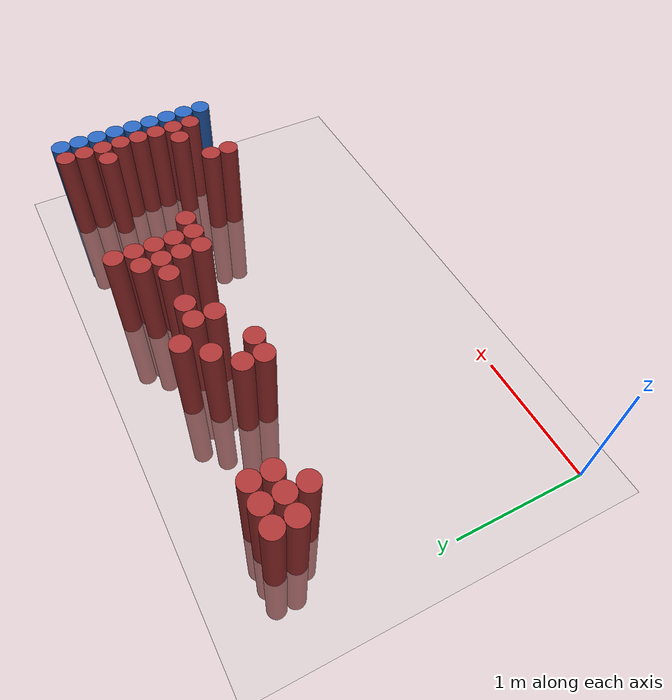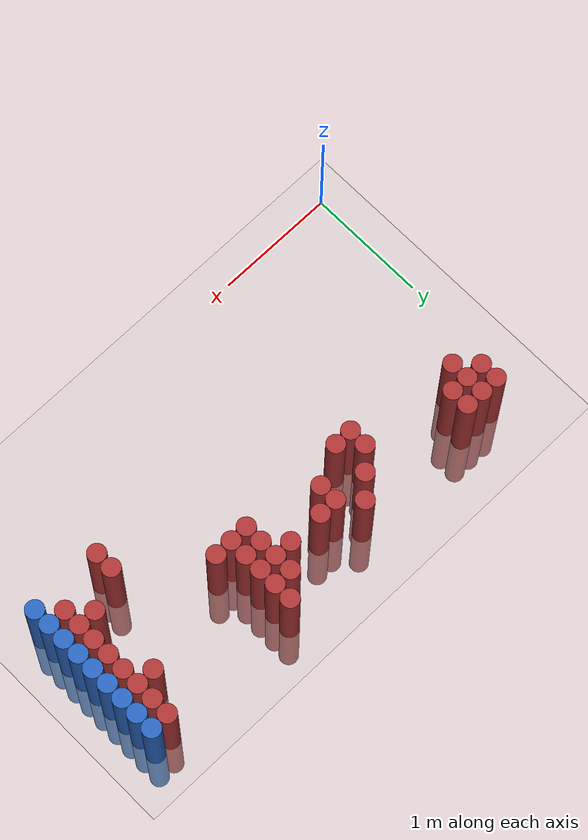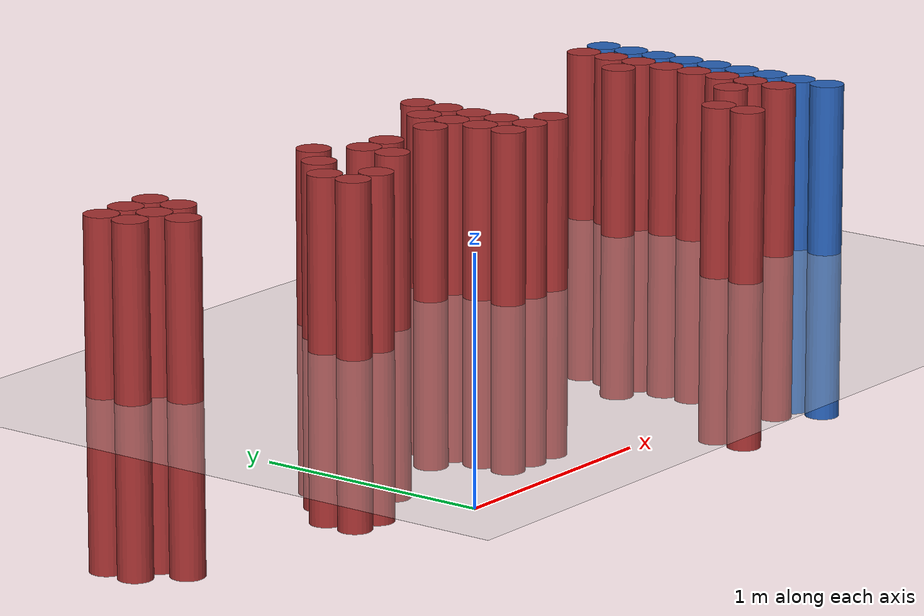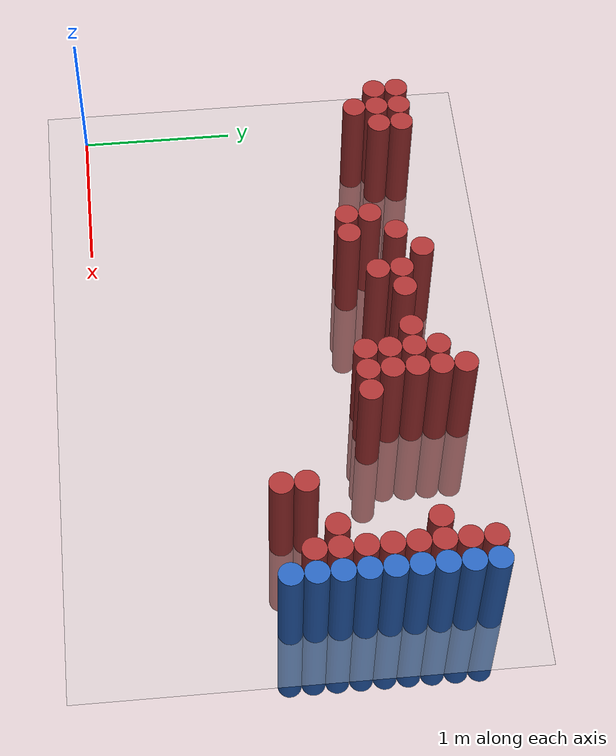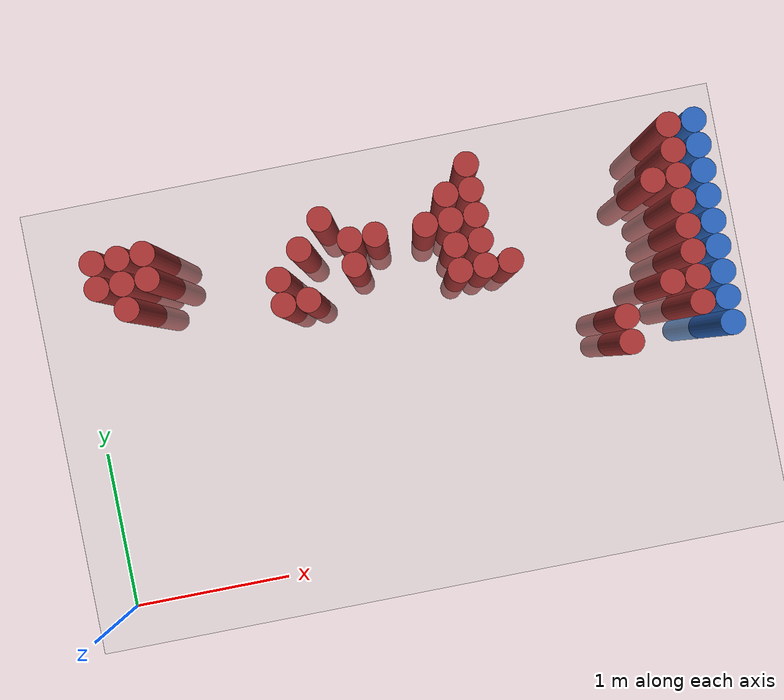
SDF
<sdf version="1.6">
 <world name="default">
  <model name="ground_plane">
   <static>1</static>
   <link name="link">
    <collision name="collision">
     <geometry><plane><normal>0 0 1</normal><size>100 100</size></plane></geometry>
     <surface><friction><ode><mu>100</mu><mu2>50</mu2></ode></friction></surface>
    </collision>
    <visual name="visual">
     <cast_shadows>0</cast_shadows>
     <geometry><plane><normal>0 0 1</normal><size>100 100</size></plane></geometry>
     <material>
      <script><uri>file://media/materials/scripts/gazebo.material</uri><name>Gazebo/Grey</name></script>
     </material>
    </visual>
   </link>
  </model>
  <model name="unit_cylinder_130">
   <static>1</static>
   <pose>3.925000 1.225000 0.000000 0.000000 0.000000 0.000000</pose>
   <link name="link">
    <inertial>
     <mass>1</mass>
     <inertia><ixx>0.145833</ixx><ixy>0</ixy><ixz>0</ixz><iyy>0.145833</iyy><iyz>0</iyz><izz>0.125</izz></inertia>
    </inertial>
    <collision name="collision">
     <geometry><cylinder><radius>0.075000</radius><length>1.5</length></cylinder></geometry>
    </collision>
    <visual name="visual">
     <geometry><cylinder><radius>0.075000</radius><length>1.5</length></cylinder></geometry>
     <material>
      <ambient>0.152000 0.379000 0.720000 1</ambient>
      <diffuse>0.152000 0.379000 0.720000 1</diffuse>
     </material>
     <material>
      <script><name>Gazebo/Grey</name><uri>file://media/materials/scripts/gazebo.material</uri></script>
     </material>
    </visual>
   </link>
  </model>
  <model name="unit_cylinder_132">
   <static>1</static>
   <pose>3.925000 1.375000 0.000000 0.000000 0.000000 0.000000</pose>
   <link name="link">
    <inertial>
     <mass>1</mass>
     <inertia><ixx>0.145833</ixx><ixy>0</ixy><ixz>0</ixz><iyy>0.145833</iyy><iyz>0</iyz><izz>0.125</izz></inertia>
    </inertial>
    <collision name="collision">
     <geometry><cylinder><radius>0.075000</radius><length>1.5</length></cylinder></geometry>
    </collision>
    <visual name="visual">
     <geometry><cylinder><radius>0.075000</radius><length>1.5</length></cylinder></geometry>
     <material>
      <ambient>0.152000 0.379000 0.720000 1</ambient>
      <diffuse>0.152000 0.379000 0.720000 1</diffuse>
     </material>
     <material>
      <script><name>Gazebo/Grey</name><uri>file://media/materials/scripts/gazebo.material</uri></script>
     </material>
    </visual>
   </link>
  </model>
  <model name="unit_cylinder_134">
   <static>1</static>
   <pose>3.925000 1.525000 0.000000 0.000000 0.000000 0.000000</pose>
   <link name="link">
    <inertial>
     <mass>1</mass>
     <inertia><ixx>0.145833</ixx><ixy>0</ixy><ixz>0</ixz><iyy>0.145833</iyy><iyz>0</iyz><izz>0.125</izz></inertia>
    </inertial>
    <collision name="collision">
     <geometry><cylinder><radius>0.075000</radius><length>1.5</length></cylinder></geometry>
    </collision>
    <visual name="visual">
     <geometry><cylinder><radius>0.075000</radius><length>1.5</length></cylinder></geometry>
     <material>
      <ambient>0.152000 0.379000 0.720000 1</ambient>
      <diffuse>0.152000 0.379000 0.720000 1</diffuse>
     </material>
     <material>
      <script><name>Gazebo/Grey</name><uri>file://media/materials/scripts/gazebo.material</uri></script>
     </material>
    </visual>
   </link>
  </model>
  <model name="unit_cylinder_136">
   <static>1</static>
   <pose>3.925000 1.675000 0.000000 0.000000 0.000000 0.000000</pose>
   <link name="link">
    <inertial>
     <mass>1</mass>
     <inertia><ixx>0.145833</ixx><ixy>0</ixy><ixz>0</ixz><iyy>0.145833</iyy><iyz>0</iyz><izz>0.125</izz></inertia>
    </inertial>
    <collision name="collision">
     <geometry><cylinder><radius>0.075000</radius><length>1.5</length></cylinder></geometry>
    </collision>
    <visual name="visual">
     <geometry><cylinder><radius>0.075000</radius><length>1.5</length></cylinder></geometry>
     <material>
      <ambient>0.152000 0.379000 0.720000 1</ambient>
      <diffuse>0.152000 0.379000 0.720000 1</diffuse>
     </material>
     <material>
      <script><name>Gazebo/Grey</name><uri>file://media/materials/scripts/gazebo.material</uri></script>
     </material>
    </visual>
   </link>
  </model>
  <model name="unit_cylinder_138">
   <static>1</static>
   <pose>3.925000 1.825000 0.000000 0.000000 0.000000 0.000000</pose>
   <link name="link">
    <inertial>
     <mass>1</mass>
     <inertia><ixx>0.145833</ixx><ixy>0</ixy><ixz>0</ixz><iyy>0.145833</iyy><iyz>0</iyz><izz>0.125</izz></inertia>
    </inertial>
    <collision name="collision">
     <geometry><cylinder><radius>0.075000</radius><length>1.5</length></cylinder></geometry>
    </collision>
    <visual name="visual">
     <geometry><cylinder><radius>0.075000</radius><length>1.5</length></cylinder></geometry>
     <material>
      <ambient>0.152000 0.379000 0.720000 1</ambient>
      <diffuse>0.152000 0.379000 0.720000 1</diffuse>
     </material>
     <material>
      <script><name>Gazebo/Grey</name><uri>file://media/materials/scripts/gazebo.material</uri></script>
     </material>
    </visual>
   </link>
  </model>
  <model name="unit_cylinder_140">
   <static>1</static>
   <pose>3.925000 1.975000 0.000000 0.000000 0.000000 0.000000</pose>
   <link name="link">
    <inertial>
     <mass>1</mass>
     <inertia><ixx>0.145833</ixx><ixy>0</ixy><ixz>0</ixz><iyy>0.145833</iyy><iyz>0</iyz><izz>0.125</izz></inertia>
    </inertial>
    <collision name="collision">
     <geometry><cylinder><radius>0.075000</radius><length>1.5</length></cylinder></geometry>
    </collision>
    <visual name="visual">
     <geometry><cylinder><radius>0.075000</radius><length>1.5</length></cylinder></geometry>
     <material>
      <ambient>0.152000 0.379000 0.720000 1</ambient>
      <diffuse>0.152000 0.379000 0.720000 1</diffuse>
     </material>
     <material>
      <script><name>Gazebo/Grey</name><uri>file://media/materials/scripts/gazebo.material</uri></script>
     </material>
    </visual>
   </link>
  </model>
  <model name="unit_cylinder_142">
   <static>1</static>
   <pose>3.925000 2.125000 0.000000 0.000000 0.000000 0.000000</pose>
   <link name="link">
    <inertial>
     <mass>1</mass>
     <inertia><ixx>0.145833</ixx><ixy>0</ixy><ixz>0</ixz><iyy>0.145833</iyy><iyz>0</iyz><izz>0.125</izz></inertia>
    </inertial>
    <collision name="collision">
     <geometry><cylinder><radius>0.075000</radius><length>1.5</length></cylinder></geometry>
    </collision>
    <visual name="visual">
     <geometry><cylinder><radius>0.075000</radius><length>1.5</length></cylinder></geometry>
     <material>
      <ambient>0.152000 0.379000 0.720000 1</ambient>
      <diffuse>0.152000 0.379000 0.720000 1</diffuse>
     </material>
     <material>
      <script><name>Gazebo/Grey</name><uri>file://media/materials/scripts/gazebo.material</uri></script>
     </material>
    </visual>
   </link>
  </model>
  <model name="unit_cylinder_144">
   <static>1</static>
   <pose>3.925000 2.275000 0.000000 0.000000 0.000000 0.000000</pose>
   <link name="link">
    <inertial>
     <mass>1</mass>
     <inertia><ixx>0.145833</ixx><ixy>0</ixy><ixz>0</ixz><iyy>0.145833</iyy><iyz>0</iyz><izz>0.125</izz></inertia>
    </inertial>
    <collision name="collision">
     <geometry><cylinder><radius>0.075000</radius><length>1.5</length></cylinder></geometry>
    </collision>
    <visual name="visual">
     <geometry><cylinder><radius>0.075000</radius><length>1.5</length></cylinder></geometry>
     <material>
      <ambient>0.152000 0.379000 0.720000 1</ambient>
      <diffuse>0.152000 0.379000 0.720000 1</diffuse>
     </material>
     <material>
      <script><name>Gazebo/Grey</name><uri>file://media/materials/scripts/gazebo.material</uri></script>
     </material>
    </visual>
   </link>
  </model>
  <model name="unit_cylinder_342">
   <static>1</static>
   <pose>0.325000 1.975000 0.000000 0.000000 0.000000 0.000000</pose>
   <link name="link">
    <inertial>
     <mass>1</mass>
     <inertia><ixx>0.145833</ixx><ixy>0</ixy><ixz>0</ixz><iyy>0.145833</iyy><iyz>0</iyz><izz>0.125</izz></inertia>
    </inertial>
    <collision name="collision">
     <geometry><cylinder><radius>0.075000</radius><length>1.5</length></cylinder></geometry>
    </collision>
    <visual name="visual">
     <geometry><cylinder><radius>0.075000</radius><length>1.5</length></cylinder></geometry>
     <material>
      <ambient>0.648000 0.192000 0.192000 1</ambient>
      <diffuse>0.648000 0.192000 0.192000 1</diffuse>
     </material>
     <material>
      <script><name>Gazebo/Grey</name><uri>file://media/materials/scripts/gazebo.material</uri></script>
     </material>
    </visual>
   </link>
  </model>
  <model name="unit_cylinder_343">
   <static>1</static>
   <pose>0.325000 2.125000 0.000000 0.000000 0.000000 0.000000</pose>
   <link name="link">
    <inertial>
     <mass>1</mass>
     <inertia><ixx>0.145833</ixx><ixy>0</ixy><ixz>0</ixz><iyy>0.145833</iyy><iyz>0</iyz><izz>0.125</izz></inertia>
    </inertial>
    <collision name="collision">
     <geometry><cylinder><radius>0.075000</radius><length>1.5</length></cylinder></geometry>
    </collision>
    <visual name="visual">
     <geometry><cylinder><radius>0.075000</radius><length>1.5</length></cylinder></geometry>
     <material>
      <ambient>0.648000 0.192000 0.192000 1</ambient>
      <diffuse>0.648000 0.192000 0.192000 1</diffuse>
     </material>
     <material>
      <script><name>Gazebo/Grey</name><uri>file://media/materials/scripts/gazebo.material</uri></script>
     </material>
    </visual>
   </link>
  </model>
  <model name="unit_cylinder_345">
   <static>1</static>
   <pose>0.475000 1.825000 0.000000 0.000000 0.000000 0.000000</pose>
   <link name="link">
    <inertial>
     <mass>1</mass>
     <inertia><ixx>0.145833</ixx><ixy>0</ixy><ixz>0</ixz><iyy>0.145833</iyy><iyz>0</iyz><izz>0.125</izz></inertia>
    </inertial>
    <collision name="collision">
     <geometry><cylinder><radius>0.075000</radius><length>1.5</length></cylinder></geometry>
    </collision>
    <visual name="visual">
     <geometry><cylinder><radius>0.075000</radius><length>1.5</length></cylinder></geometry>
     <material>
      <ambient>0.648000 0.192000 0.192000 1</ambient>
      <diffuse>0.648000 0.192000 0.192000 1</diffuse>
     </material>
     <material>
      <script><name>Gazebo/Grey</name><uri>file://media/materials/scripts/gazebo.material</uri></script>
     </material>
    </visual>
   </link>
  </model>
  <model name="unit_cylinder_346">
   <static>1</static>
   <pose>0.475000 1.975000 0.000000 0.000000 0.000000 0.000000</pose>
   <link name="link">
    <inertial>
     <mass>1</mass>
     <inertia><ixx>0.145833</ixx><ixy>0</ixy><ixz>0</ixz><iyy>0.145833</iyy><iyz>0</iyz><izz>0.125</izz></inertia>
    </inertial>
    <collision name="collision">
     <geometry><cylinder><radius>0.075000</radius><length>1.5</length></cylinder></geometry>
    </collision>
    <visual name="visual">
     <geometry><cylinder><radius>0.075000</radius><length>1.5</length></cylinder></geometry>
     <material>
      <ambient>0.648000 0.192000 0.192000 1</ambient>
      <diffuse>0.648000 0.192000 0.192000 1</diffuse>
     </material>
     <material>
      <script><name>Gazebo/Grey</name><uri>file://media/materials/scripts/gazebo.material</uri></script>
     </material>
    </visual>
   </link>
  </model>
  <model name="unit_cylinder_347">
   <static>1</static>
   <pose>0.475000 2.125000 0.000000 0.000000 0.000000 0.000000</pose>
   <link name="link">
    <inertial>
     <mass>1</mass>
     <inertia><ixx>0.145833</ixx><ixy>0</ixy><ixz>0</ixz><iyy>0.145833</iyy><iyz>0</iyz><izz>0.125</izz></inertia>
    </inertial>
    <collision name="collision">
     <geometry><cylinder><radius>0.075000</radius><length>1.5</length></cylinder></geometry>
    </collision>
    <visual name="visual">
     <geometry><cylinder><radius>0.075000</radius><length>1.5</length></cylinder></geometry>
     <material>
      <ambient>0.648000 0.192000 0.192000 1</ambient>
      <diffuse>0.648000 0.192000 0.192000 1</diffuse>
     </material>
     <material>
      <script><name>Gazebo/Grey</name><uri>file://media/materials/scripts/gazebo.material</uri></script>
     </material>
    </visual>
   </link>
  </model>
  <model name="unit_cylinder_348">
   <static>1</static>
   <pose>0.625000 1.975000 0.000000 0.000000 0.000000 0.000000</pose>
   <link name="link">
    <inertial>
     <mass>1</mass>
     <inertia><ixx>0.145833</ixx><ixy>0</ixy><ixz>0</ixz><iyy>0.145833</iyy><iyz>0</iyz><izz>0.125</izz></inertia>
    </inertial>
    <collision name="collision">
     <geometry><cylinder><radius>0.075000</radius><length>1.5</length></cylinder></geometry>
    </collision>
    <visual name="visual">
     <geometry><cylinder><radius>0.075000</radius><length>1.5</length></cylinder></geometry>
     <material>
      <ambient>0.648000 0.192000 0.192000 1</ambient>
      <diffuse>0.648000 0.192000 0.192000 1</diffuse>
     </material>
     <material>
      <script><name>Gazebo/Grey</name><uri>file://media/materials/scripts/gazebo.material</uri></script>
     </material>
    </visual>
   </link>
  </model>
  <model name="unit_cylinder_349">
   <static>1</static>
   <pose>0.625000 2.125000 0.000000 0.000000 0.000000 0.000000</pose>
   <link name="link">
    <inertial>
     <mass>1</mass>
     <inertia><ixx>0.145833</ixx><ixy>0</ixy><ixz>0</ixz><iyy>0.145833</iyy><iyz>0</iyz><izz>0.125</izz></inertia>
    </inertial>
    <collision name="collision">
     <geometry><cylinder><radius>0.075000</radius><length>1.5</length></cylinder></geometry>
    </collision>
    <visual name="visual">
     <geometry><cylinder><radius>0.075000</radius><length>1.5</length></cylinder></geometry>
     <material>
      <ambient>0.648000 0.192000 0.192000 1</ambient>
      <diffuse>0.648000 0.192000 0.192000 1</diffuse>
     </material>
     <material>
      <script><name>Gazebo/Grey</name><uri>file://media/materials/scripts/gazebo.material</uri></script>
     </material>
    </visual>
   </link>
  </model>
  <model name="unit_cylinder_375">
   <static>1</static>
   <pose>1.375000 1.675000 0.000000 0.000000 0.000000 0.000000</pose>
   <link name="link">
    <inertial>
     <mass>1</mass>
     <inertia><ixx>0.145833</ixx><ixy>0</ixy><ixz>0</ixz><iyy>0.145833</iyy><iyz>0</iyz><izz>0.125</izz></inertia>
    </inertial>
    <collision name="collision">
     <geometry><cylinder><radius>0.075000</radius><length>1.5</length></cylinder></geometry>
    </collision>
    <visual name="visual">
     <geometry><cylinder><radius>0.075000</radius><length>1.5</length></cylinder></geometry>
     <material>
      <ambient>0.648000 0.192000 0.192000 1</ambient>
      <diffuse>0.648000 0.192000 0.192000 1</diffuse>
     </material>
     <material>
      <script><name>Gazebo/Grey</name><uri>file://media/materials/scripts/gazebo.material</uri></script>
     </material>
    </visual>
   </link>
  </model>
  <model name="unit_cylinder_376">
   <static>1</static>
   <pose>1.375000 1.825000 0.000000 0.000000 0.000000 0.000000</pose>
   <link name="link">
    <inertial>
     <mass>1</mass>
     <inertia><ixx>0.145833</ixx><ixy>0</ixy><ixz>0</ixz><iyy>0.145833</iyy><iyz>0</iyz><izz>0.125</izz></inertia>
    </inertial>
    <collision name="collision">
     <geometry><cylinder><radius>0.075000</radius><length>1.5</length></cylinder></geometry>
    </collision>
    <visual name="visual">
     <geometry><cylinder><radius>0.075000</radius><length>1.5</length></cylinder></geometry>
     <material>
      <ambient>0.648000 0.192000 0.192000 1</ambient>
      <diffuse>0.648000 0.192000 0.192000 1</diffuse>
     </material>
     <material>
      <script><name>Gazebo/Grey</name><uri>file://media/materials/scripts/gazebo.material</uri></script>
     </material>
    </visual>
   </link>
  </model>
  <model name="unit_cylinder_382">
   <static>1</static>
   <pose>1.525000 1.675000 0.000000 0.000000 0.000000 0.000000</pose>
   <link name="link">
    <inertial>
     <mass>1</mass>
     <inertia><ixx>0.145833</ixx><ixy>0</ixy><ixz>0</ixz><iyy>0.145833</iyy><iyz>0</iyz><izz>0.125</izz></inertia>
    </inertial>
    <collision name="collision">
     <geometry><cylinder><radius>0.075000</radius><length>1.5</length></cylinder></geometry>
    </collision>
    <visual name="visual">
     <geometry><cylinder><radius>0.075000</radius><length>1.5</length></cylinder></geometry>
     <material>
      <ambient>0.648000 0.192000 0.192000 1</ambient>
      <diffuse>0.648000 0.192000 0.192000 1</diffuse>
     </material>
     <material>
      <script><name>Gazebo/Grey</name><uri>file://media/materials/scripts/gazebo.material</uri></script>
     </material>
    </visual>
   </link>
  </model>
  <model name="unit_cylinder_383">
   <static>1</static>
   <pose>1.525000 1.975000 0.000000 0.000000 0.000000 0.000000</pose>
   <link name="link">
    <inertial>
     <mass>1</mass>
     <inertia><ixx>0.145833</ixx><ixy>0</ixy><ixz>0</ixz><iyy>0.145833</iyy><iyz>0</iyz><izz>0.125</izz></inertia>
    </inertial>
    <collision name="collision">
     <geometry><cylinder><radius>0.075000</radius><length>1.5</length></cylinder></geometry>
    </collision>
    <visual name="visual">
     <geometry><cylinder><radius>0.075000</radius><length>1.5</length></cylinder></geometry>
     <material>
      <ambient>0.648000 0.192000 0.192000 1</ambient>
      <diffuse>0.648000 0.192000 0.192000 1</diffuse>
     </material>
     <material>
      <script><name>Gazebo/Grey</name><uri>file://media/materials/scripts/gazebo.material</uri></script>
     </material>
    </visual>
   </link>
  </model>
  <model name="unit_cylinder_390">
   <static>1</static>
   <pose>1.675000 2.125000 0.000000 0.000000 0.000000 0.000000</pose>
   <link name="link">
    <inertial>
     <mass>1</mass>
     <inertia><ixx>0.145833</ixx><ixy>0</ixy><ixz>0</ixz><iyy>0.145833</iyy><iyz>0</iyz><izz>0.125</izz></inertia>
    </inertial>
    <collision name="collision">
     <geometry><cylinder><radius>0.075000</radius><length>1.5</length></cylinder></geometry>
    </collision>
    <visual name="visual">
     <geometry><cylinder><radius>0.075000</radius><length>1.5</length></cylinder></geometry>
     <material>
      <ambient>0.648000 0.192000 0.192000 1</ambient>
      <diffuse>0.648000 0.192000 0.192000 1</diffuse>
     </material>
     <material>
      <script><name>Gazebo/Grey</name><uri>file://media/materials/scripts/gazebo.material</uri></script>
     </material>
    </visual>
   </link>
  </model>
  <model name="unit_cylinder_399">
   <static>1</static>
   <pose>1.825000 1.825000 0.000000 0.000000 0.000000 0.000000</pose>
   <link name="link">
    <inertial>
     <mass>1</mass>
     <inertia><ixx>0.145833</ixx><ixy>0</ixy><ixz>0</ixz><iyy>0.145833</iyy><iyz>0</iyz><izz>0.125</izz></inertia>
    </inertial>
    <collision name="collision">
     <geometry><cylinder><radius>0.075000</radius><length>1.5</length></cylinder></geometry>
    </collision>
    <visual name="visual">
     <geometry><cylinder><radius>0.075000</radius><length>1.5</length></cylinder></geometry>
     <material>
      <ambient>0.648000 0.192000 0.192000 1</ambient>
      <diffuse>0.648000 0.192000 0.192000 1</diffuse>
     </material>
     <material>
      <script><name>Gazebo/Grey</name><uri>file://media/materials/scripts/gazebo.material</uri></script>
     </material>
    </visual>
   </link>
  </model>
  <model name="unit_cylinder_400">
   <static>1</static>
   <pose>1.825000 1.975000 0.000000 0.000000 0.000000 0.000000</pose>
   <link name="link">
    <inertial>
     <mass>1</mass>
     <inertia><ixx>0.145833</ixx><ixy>0</ixy><ixz>0</ixz><iyy>0.145833</iyy><iyz>0</iyz><izz>0.125</izz></inertia>
    </inertial>
    <collision name="collision">
     <geometry><cylinder><radius>0.075000</radius><length>1.5</length></cylinder></geometry>
    </collision>
    <visual name="visual">
     <geometry><cylinder><radius>0.075000</radius><length>1.5</length></cylinder></geometry>
     <material>
      <ambient>0.648000 0.192000 0.192000 1</ambient>
      <diffuse>0.648000 0.192000 0.192000 1</diffuse>
     </material>
     <material>
      <script><name>Gazebo/Grey</name><uri>file://media/materials/scripts/gazebo.material</uri></script>
     </material>
    </visual>
   </link>
  </model>
  <model name="unit_cylinder_407">
   <static>1</static>
   <pose>1.975000 1.975000 0.000000 0.000000 0.000000 0.000000</pose>
   <link name="link">
    <inertial>
     <mass>1</mass>
     <inertia><ixx>0.145833</ixx><ixy>0</ixy><ixz>0</ixz><iyy>0.145833</iyy><iyz>0</iyz><izz>0.125</izz></inertia>
    </inertial>
    <collision name="collision">
     <geometry><cylinder><radius>0.075000</radius><length>1.5</length></cylinder></geometry>
    </collision>
    <visual name="visual">
     <geometry><cylinder><radius>0.075000</radius><length>1.5</length></cylinder></geometry>
     <material>
      <ambient>0.648000 0.192000 0.192000 1</ambient>
      <diffuse>0.648000 0.192000 0.192000 1</diffuse>
     </material>
     <material>
      <script><name>Gazebo/Grey</name><uri>file://media/materials/scripts/gazebo.material</uri></script>
     </material>
    </visual>
   </link>
  </model>
  <model name="unit_cylinder_418">
   <static>1</static>
   <pose>2.275000 1.975000 0.000000 0.000000 0.000000 0.000000</pose>
   <link name="link">
    <inertial>
     <mass>1</mass>
     <inertia><ixx>0.145833</ixx><ixy>0</ixy><ixz>0</ixz><iyy>0.145833</iyy><iyz>0</iyz><izz>0.125</izz></inertia>
    </inertial>
    <collision name="collision">
     <geometry><cylinder><radius>0.075000</radius><length>1.5</length></cylinder></geometry>
    </collision>
    <visual name="visual">
     <geometry><cylinder><radius>0.075000</radius><length>1.5</length></cylinder></geometry>
     <material>
      <ambient>0.648000 0.192000 0.192000 1</ambient>
      <diffuse>0.648000 0.192000 0.192000 1</diffuse>
     </material>
     <material>
      <script><name>Gazebo/Grey</name><uri>file://media/materials/scripts/gazebo.material</uri></script>
     </material>
    </visual>
   </link>
  </model>
  <model name="unit_cylinder_420">
   <static>1</static>
   <pose>2.425000 1.675000 0.000000 0.000000 0.000000 0.000000</pose>
   <link name="link">
    <inertial>
     <mass>1</mass>
     <inertia><ixx>0.145833</ixx><ixy>0</ixy><ixz>0</ixz><iyy>0.145833</iyy><iyz>0</iyz><izz>0.125</izz></inertia>
    </inertial>
    <collision name="collision">
     <geometry><cylinder><radius>0.075000</radius><length>1.5</length></cylinder></geometry>
    </collision>
    <visual name="visual">
     <geometry><cylinder><radius>0.075000</radius><length>1.5</length></cylinder></geometry>
     <material>
      <ambient>0.648000 0.192000 0.192000 1</ambient>
      <diffuse>0.648000 0.192000 0.192000 1</diffuse>
     </material>
     <material>
      <script><name>Gazebo/Grey</name><uri>file://media/materials/scripts/gazebo.material</uri></script>
     </material>
    </visual>
   </link>
  </model>
  <model name="unit_cylinder_421">
   <static>1</static>
   <pose>2.425000 1.825000 0.000000 0.000000 0.000000 0.000000</pose>
   <link name="link">
    <inertial>
     <mass>1</mass>
     <inertia><ixx>0.145833</ixx><ixy>0</ixy><ixz>0</ixz><iyy>0.145833</iyy><iyz>0</iyz><izz>0.125</izz></inertia>
    </inertial>
    <collision name="collision">
     <geometry><cylinder><radius>0.075000</radius><length>1.5</length></cylinder></geometry>
    </collision>
    <visual name="visual">
     <geometry><cylinder><radius>0.075000</radius><length>1.5</length></cylinder></geometry>
     <material>
      <ambient>0.648000 0.192000 0.192000 1</ambient>
      <diffuse>0.648000 0.192000 0.192000 1</diffuse>
     </material>
     <material>
      <script><name>Gazebo/Grey</name><uri>file://media/materials/scripts/gazebo.material</uri></script>
     </material>
    </visual>
   </link>
  </model>
  <model name="unit_cylinder_422">
   <static>1</static>
   <pose>2.425000 1.975000 0.000000 0.000000 0.000000 0.000000</pose>
   <link name="link">
    <inertial>
     <mass>1</mass>
     <inertia><ixx>0.145833</ixx><ixy>0</ixy><ixz>0</ixz><iyy>0.145833</iyy><iyz>0</iyz><izz>0.125</izz></inertia>
    </inertial>
    <collision name="collision">
     <geometry><cylinder><radius>0.075000</radius><length>1.5</length></cylinder></geometry>
    </collision>
    <visual name="visual">
     <geometry><cylinder><radius>0.075000</radius><length>1.5</length></cylinder></geometry>
     <material>
      <ambient>0.648000 0.192000 0.192000 1</ambient>
      <diffuse>0.648000 0.192000 0.192000 1</diffuse>
     </material>
     <material>
      <script><name>Gazebo/Grey</name><uri>file://media/materials/scripts/gazebo.material</uri></script>
     </material>
    </visual>
   </link>
  </model>
  <model name="unit_cylinder_423">
   <static>1</static>
   <pose>2.425000 2.125000 0.000000 0.000000 0.000000 0.000000</pose>
   <link name="link">
    <inertial>
     <mass>1</mass>
     <inertia><ixx>0.145833</ixx><ixy>0</ixy><ixz>0</ixz><iyy>0.145833</iyy><iyz>0</iyz><izz>0.125</izz></inertia>
    </inertial>
    <collision name="collision">
     <geometry><cylinder><radius>0.075000</radius><length>1.5</length></cylinder></geometry>
    </collision>
    <visual name="visual">
     <geometry><cylinder><radius>0.075000</radius><length>1.5</length></cylinder></geometry>
     <material>
      <ambient>0.648000 0.192000 0.192000 1</ambient>
      <diffuse>0.648000 0.192000 0.192000 1</diffuse>
     </material>
     <material>
      <script><name>Gazebo/Grey</name><uri>file://media/materials/scripts/gazebo.material</uri></script>
     </material>
    </visual>
   </link>
  </model>
  <model name="unit_cylinder_424">
   <static>1</static>
   <pose>2.575000 1.675000 0.000000 0.000000 0.000000 0.000000</pose>
   <link name="link">
    <inertial>
     <mass>1</mass>
     <inertia><ixx>0.145833</ixx><ixy>0</ixy><ixz>0</ixz><iyy>0.145833</iyy><iyz>0</iyz><izz>0.125</izz></inertia>
    </inertial>
    <collision name="collision">
     <geometry><cylinder><radius>0.075000</radius><length>1.5</length></cylinder></geometry>
    </collision>
    <visual name="visual">
     <geometry><cylinder><radius>0.075000</radius><length>1.5</length></cylinder></geometry>
     <material>
      <ambient>0.648000 0.192000 0.192000 1</ambient>
      <diffuse>0.648000 0.192000 0.192000 1</diffuse>
     </material>
     <material>
      <script><name>Gazebo/Grey</name><uri>file://media/materials/scripts/gazebo.material</uri></script>
     </material>
    </visual>
   </link>
  </model>
  <model name="unit_cylinder_425">
   <static>1</static>
   <pose>2.575000 1.825000 0.000000 0.000000 0.000000 0.000000</pose>
   <link name="link">
    <inertial>
     <mass>1</mass>
     <inertia><ixx>0.145833</ixx><ixy>0</ixy><ixz>0</ixz><iyy>0.145833</iyy><iyz>0</iyz><izz>0.125</izz></inertia>
    </inertial>
    <collision name="collision">
     <geometry><cylinder><radius>0.075000</radius><length>1.5</length></cylinder></geometry>
    </collision>
    <visual name="visual">
     <geometry><cylinder><radius>0.075000</radius><length>1.5</length></cylinder></geometry>
     <material>
      <ambient>0.648000 0.192000 0.192000 1</ambient>
      <diffuse>0.648000 0.192000 0.192000 1</diffuse>
     </material>
     <material>
      <script><name>Gazebo/Grey</name><uri>file://media/materials/scripts/gazebo.material</uri></script>
     </material>
    </visual>
   </link>
  </model>
  <model name="unit_cylinder_426">
   <static>1</static>
   <pose>2.575000 1.975000 0.000000 0.000000 0.000000 0.000000</pose>
   <link name="link">
    <inertial>
     <mass>1</mass>
     <inertia><ixx>0.145833</ixx><ixy>0</ixy><ixz>0</ixz><iyy>0.145833</iyy><iyz>0</iyz><izz>0.125</izz></inertia>
    </inertial>
    <collision name="collision">
     <geometry><cylinder><radius>0.075000</radius><length>1.5</length></cylinder></geometry>
    </collision>
    <visual name="visual">
     <geometry><cylinder><radius>0.075000</radius><length>1.5</length></cylinder></geometry>
     <material>
      <ambient>0.648000 0.192000 0.192000 1</ambient>
      <diffuse>0.648000 0.192000 0.192000 1</diffuse>
     </material>
     <material>
      <script><name>Gazebo/Grey</name><uri>file://media/materials/scripts/gazebo.material</uri></script>
     </material>
    </visual>
   </link>
  </model>
  <model name="unit_cylinder_427">
   <static>1</static>
   <pose>2.575000 2.125000 0.000000 0.000000 0.000000 0.000000</pose>
   <link name="link">
    <inertial>
     <mass>1</mass>
     <inertia><ixx>0.145833</ixx><ixy>0</ixy><ixz>0</ixz><iyy>0.145833</iyy><iyz>0</iyz><izz>0.125</izz></inertia>
    </inertial>
    <collision name="collision">
     <geometry><cylinder><radius>0.075000</radius><length>1.5</length></cylinder></geometry>
    </collision>
    <visual name="visual">
     <geometry><cylinder><radius>0.075000</radius><length>1.5</length></cylinder></geometry>
     <material>
      <ambient>0.648000 0.192000 0.192000 1</ambient>
      <diffuse>0.648000 0.192000 0.192000 1</diffuse>
     </material>
     <material>
      <script><name>Gazebo/Grey</name><uri>file://media/materials/scripts/gazebo.material</uri></script>
     </material>
    </visual>
   </link>
  </model>
  <model name="unit_cylinder_428">
   <static>1</static>
   <pose>2.575000 2.275000 0.000000 0.000000 0.000000 0.000000</pose>
   <link name="link">
    <inertial>
     <mass>1</mass>
     <inertia><ixx>0.145833</ixx><ixy>0</ixy><ixz>0</ixz><iyy>0.145833</iyy><iyz>0</iyz><izz>0.125</izz></inertia>
    </inertial>
    <collision name="collision">
     <geometry><cylinder><radius>0.075000</radius><length>1.5</length></cylinder></geometry>
    </collision>
    <visual name="visual">
     <geometry><cylinder><radius>0.075000</radius><length>1.5</length></cylinder></geometry>
     <material>
      <ambient>0.648000 0.192000 0.192000 1</ambient>
      <diffuse>0.648000 0.192000 0.192000 1</diffuse>
     </material>
     <material>
      <script><name>Gazebo/Grey</name><uri>file://media/materials/scripts/gazebo.material</uri></script>
     </material>
    </visual>
   </link>
  </model>
  <model name="unit_cylinder_429">
   <static>1</static>
   <pose>2.725000 1.675000 0.000000 0.000000 0.000000 0.000000</pose>
   <link name="link">
    <inertial>
     <mass>1</mass>
     <inertia><ixx>0.145833</ixx><ixy>0</ixy><ixz>0</ixz><iyy>0.145833</iyy><iyz>0</iyz><izz>0.125</izz></inertia>
    </inertial>
    <collision name="collision">
     <geometry><cylinder><radius>0.075000</radius><length>1.5</length></cylinder></geometry>
    </collision>
    <visual name="visual">
     <geometry><cylinder><radius>0.075000</radius><length>1.5</length></cylinder></geometry>
     <material>
      <ambient>0.648000 0.192000 0.192000 1</ambient>
      <diffuse>0.648000 0.192000 0.192000 1</diffuse>
     </material>
     <material>
      <script><name>Gazebo/Grey</name><uri>file://media/materials/scripts/gazebo.material</uri></script>
     </material>
    </visual>
   </link>
  </model>
  <model name="unit_cylinder_442">
   <static>1</static>
   <pose>3.325000 1.075000 0.000000 0.000000 0.000000 0.000000</pose>
   <link name="link">
    <inertial>
     <mass>1</mass>
     <inertia><ixx>0.145833</ixx><ixy>0</ixy><ixz>0</ixz><iyy>0.145833</iyy><iyz>0</iyz><izz>0.125</izz></inertia>
    </inertial>
    <collision name="collision">
     <geometry><cylinder><radius>0.075000</radius><length>1.5</length></cylinder></geometry>
    </collision>
    <visual name="visual">
     <geometry><cylinder><radius>0.075000</radius><length>1.5</length></cylinder></geometry>
     <material>
      <ambient>0.648000 0.192000 0.192000 1</ambient>
      <diffuse>0.648000 0.192000 0.192000 1</diffuse>
     </material>
     <material>
      <script><name>Gazebo/Grey</name><uri>file://media/materials/scripts/gazebo.material</uri></script>
     </material>
    </visual>
   </link>
  </model>
  <model name="unit_cylinder_443">
   <static>1</static>
   <pose>3.325000 1.225000 0.000000 0.000000 0.000000 0.000000</pose>
   <link name="link">
    <inertial>
     <mass>1</mass>
     <inertia><ixx>0.145833</ixx><ixy>0</ixy><ixz>0</ixz><iyy>0.145833</iyy><iyz>0</iyz><izz>0.125</izz></inertia>
    </inertial>
    <collision name="collision">
     <geometry><cylinder><radius>0.075000</radius><length>1.5</length></cylinder></geometry>
    </collision>
    <visual name="visual">
     <geometry><cylinder><radius>0.075000</radius><length>1.5</length></cylinder></geometry>
     <material>
      <ambient>0.648000 0.192000 0.192000 1</ambient>
      <diffuse>0.648000 0.192000 0.192000 1</diffuse>
     </material>
     <material>
      <script><name>Gazebo/Grey</name><uri>file://media/materials/scripts/gazebo.material</uri></script>
     </material>
    </visual>
   </link>
  </model>
  <model name="unit_cylinder_451">
   <static>1</static>
   <pose>3.625000 1.375000 0.000000 0.000000 0.000000 0.000000</pose>
   <link name="link">
    <inertial>
     <mass>1</mass>
     <inertia><ixx>0.145833</ixx><ixy>0</ixy><ixz>0</ixz><iyy>0.145833</iyy><iyz>0</iyz><izz>0.125</izz></inertia>
    </inertial>
    <collision name="collision">
     <geometry><cylinder><radius>0.075000</radius><length>1.5</length></cylinder></geometry>
    </collision>
    <visual name="visual">
     <geometry><cylinder><radius>0.075000</radius><length>1.5</length></cylinder></geometry>
     <material>
      <ambient>0.648000 0.192000 0.192000 1</ambient>
      <diffuse>0.648000 0.192000 0.192000 1</diffuse>
     </material>
     <material>
      <script><name>Gazebo/Grey</name><uri>file://media/materials/scripts/gazebo.material</uri></script>
     </material>
    </visual>
   </link>
  </model>
  <model name="unit_cylinder_452">
   <static>1</static>
   <pose>3.625000 1.975000 0.000000 0.000000 0.000000 0.000000</pose>
   <link name="link">
    <inertial>
     <mass>1</mass>
     <inertia><ixx>0.145833</ixx><ixy>0</ixy><ixz>0</ixz><iyy>0.145833</iyy><iyz>0</iyz><izz>0.125</izz></inertia>
    </inertial>
    <collision name="collision">
     <geometry><cylinder><radius>0.075000</radius><length>1.5</length></cylinder></geometry>
    </collision>
    <visual name="visual">
     <geometry><cylinder><radius>0.075000</radius><length>1.5</length></cylinder></geometry>
     <material>
      <ambient>0.648000 0.192000 0.192000 1</ambient>
      <diffuse>0.648000 0.192000 0.192000 1</diffuse>
     </material>
     <material>
      <script><name>Gazebo/Grey</name><uri>file://media/materials/scripts/gazebo.material</uri></script>
     </material>
    </visual>
   </link>
  </model>
  <model name="unit_cylinder_464">
   <static>1</static>
   <pose>3.775000 1.225000 0.000000 0.000000 0.000000 0.000000</pose>
   <link name="link">
    <inertial>
     <mass>1</mass>
     <inertia><ixx>0.145833</ixx><ixy>0</ixy><ixz>0</ixz><iyy>0.145833</iyy><iyz>0</iyz><izz>0.125</izz></inertia>
    </inertial>
    <collision name="collision">
     <geometry><cylinder><radius>0.075000</radius><length>1.5</length></cylinder></geometry>
    </collision>
    <visual name="visual">
     <geometry><cylinder><radius>0.075000</radius><length>1.5</length></cylinder></geometry>
     <material>
      <ambient>0.648000 0.192000 0.192000 1</ambient>
      <diffuse>0.648000 0.192000 0.192000 1</diffuse>
     </material>
     <material>
      <script><name>Gazebo/Grey</name><uri>file://media/materials/scripts/gazebo.material</uri></script>
     </material>
    </visual>
   </link>
  </model>
  <model name="unit_cylinder_465">
   <static>1</static>
   <pose>3.775000 1.375000 0.000000 0.000000 0.000000 0.000000</pose>
   <link name="link">
    <inertial>
     <mass>1</mass>
     <inertia><ixx>0.145833</ixx><ixy>0</ixy><ixz>0</ixz><iyy>0.145833</iyy><iyz>0</iyz><izz>0.125</izz></inertia>
    </inertial>
    <collision name="collision">
     <geometry><cylinder><radius>0.075000</radius><length>1.5</length></cylinder></geometry>
    </collision>
    <visual name="visual">
     <geometry><cylinder><radius>0.075000</radius><length>1.5</length></cylinder></geometry>
     <material>
      <ambient>0.648000 0.192000 0.192000 1</ambient>
      <diffuse>0.648000 0.192000 0.192000 1</diffuse>
     </material>
     <material>
      <script><name>Gazebo/Grey</name><uri>file://media/materials/scripts/gazebo.material</uri></script>
     </material>
    </visual>
   </link>
  </model>
  <model name="unit_cylinder_466">
   <static>1</static>
   <pose>3.775000 1.525000 0.000000 0.000000 0.000000 0.000000</pose>
   <link name="link">
    <inertial>
     <mass>1</mass>
     <inertia><ixx>0.145833</ixx><ixy>0</ixy><ixz>0</ixz><iyy>0.145833</iyy><iyz>0</iyz><izz>0.125</izz></inertia>
    </inertial>
    <collision name="collision">
     <geometry><cylinder><radius>0.075000</radius><length>1.5</length></cylinder></geometry>
    </collision>
    <visual name="visual">
     <geometry><cylinder><radius>0.075000</radius><length>1.5</length></cylinder></geometry>
     <material>
      <ambient>0.648000 0.192000 0.192000 1</ambient>
      <diffuse>0.648000 0.192000 0.192000 1</diffuse>
     </material>
     <material>
      <script><name>Gazebo/Grey</name><uri>file://media/materials/scripts/gazebo.material</uri></script>
     </material>
    </visual>
   </link>
  </model>
  <model name="unit_cylinder_467">
   <static>1</static>
   <pose>3.775000 1.675000 0.000000 0.000000 0.000000 0.000000</pose>
   <link name="link">
    <inertial>
     <mass>1</mass>
     <inertia><ixx>0.145833</ixx><ixy>0</ixy><ixz>0</ixz><iyy>0.145833</iyy><iyz>0</iyz><izz>0.125</izz></inertia>
    </inertial>
    <collision name="collision">
     <geometry><cylinder><radius>0.075000</radius><length>1.5</length></cylinder></geometry>
    </collision>
    <visual name="visual">
     <geometry><cylinder><radius>0.075000</radius><length>1.5</length></cylinder></geometry>
     <material>
      <ambient>0.648000 0.192000 0.192000 1</ambient>
      <diffuse>0.648000 0.192000 0.192000 1</diffuse>
     </material>
     <material>
      <script><name>Gazebo/Grey</name><uri>file://media/materials/scripts/gazebo.material</uri></script>
     </material>
    </visual>
   </link>
  </model>
  <model name="unit_cylinder_468">
   <static>1</static>
   <pose>3.775000 1.825000 0.000000 0.000000 0.000000 0.000000</pose>
   <link name="link">
    <inertial>
     <mass>1</mass>
     <inertia><ixx>0.145833</ixx><ixy>0</ixy><ixz>0</ixz><iyy>0.145833</iyy><iyz>0</iyz><izz>0.125</izz></inertia>
    </inertial>
    <collision name="collision">
     <geometry><cylinder><radius>0.075000</radius><length>1.5</length></cylinder></geometry>
    </collision>
    <visual name="visual">
     <geometry><cylinder><radius>0.075000</radius><length>1.5</length></cylinder></geometry>
     <material>
      <ambient>0.648000 0.192000 0.192000 1</ambient>
      <diffuse>0.648000 0.192000 0.192000 1</diffuse>
     </material>
     <material>
      <script><name>Gazebo/Grey</name><uri>file://media/materials/scripts/gazebo.material</uri></script>
     </material>
    </visual>
   </link>
  </model>
  <model name="unit_cylinder_469">
   <static>1</static>
   <pose>3.775000 1.975000 0.000000 0.000000 0.000000 0.000000</pose>
   <link name="link">
    <inertial>
     <mass>1</mass>
     <inertia><ixx>0.145833</ixx><ixy>0</ixy><ixz>0</ixz><iyy>0.145833</iyy><iyz>0</iyz><izz>0.125</izz></inertia>
    </inertial>
    <collision name="collision">
     <geometry><cylinder><radius>0.075000</radius><length>1.5</length></cylinder></geometry>
    </collision>
    <visual name="visual">
     <geometry><cylinder><radius>0.075000</radius><length>1.5</length></cylinder></geometry>
     <material>
      <ambient>0.648000 0.192000 0.192000 1</ambient>
      <diffuse>0.648000 0.192000 0.192000 1</diffuse>
     </material>
     <material>
      <script><name>Gazebo/Grey</name><uri>file://media/materials/scripts/gazebo.material</uri></script>
     </material>
    </visual>
   </link>
  </model>
  <model name="unit_cylinder_470">
   <static>1</static>
   <pose>3.775000 2.125000 0.000000 0.000000 0.000000 0.000000</pose>
   <link name="link">
    <inertial>
     <mass>1</mass>
     <inertia><ixx>0.145833</ixx><ixy>0</ixy><ixz>0</ixz><iyy>0.145833</iyy><iyz>0</iyz><izz>0.125</izz></inertia>
    </inertial>
    <collision name="collision">
     <geometry><cylinder><radius>0.075000</radius><length>1.5</length></cylinder></geometry>
    </collision>
    <visual name="visual">
     <geometry><cylinder><radius>0.075000</radius><length>1.5</length></cylinder></geometry>
     <material>
      <ambient>0.648000 0.192000 0.192000 1</ambient>
      <diffuse>0.648000 0.192000 0.192000 1</diffuse>
     </material>
     <material>
      <script><name>Gazebo/Grey</name><uri>file://media/materials/scripts/gazebo.material</uri></script>
     </material>
    </visual>
   </link>
  </model>
  <model name="unit_cylinder_471">
   <static>1</static>
   <pose>3.775000 2.275000 0.000000 0.000000 0.000000 0.000000</pose>
   <link name="link">
    <inertial>
     <mass>1</mass>
     <inertia><ixx>0.145833</ixx><ixy>0</ixy><ixz>0</ixz><iyy>0.145833</iyy><iyz>0</iyz><izz>0.125</izz></inertia>
    </inertial>
    <collision name="collision">
     <geometry><cylinder><radius>0.075000</radius><length>1.5</length></cylinder></geometry>
    </collision>
    <visual name="visual">
     <geometry><cylinder><radius>0.075000</radius><length>1.5</length></cylinder></geometry>
     <material>
      <ambient>0.648000 0.192000 0.192000 1</ambient>
      <diffuse>0.648000 0.192000 0.192000 1</diffuse>
     </material>
     <material>
      <script><name>Gazebo/Grey</name><uri>file://media/materials/scripts/gazebo.material</uri></script>
     </material>
    </visual>
   </link>
  </model>
  <model name="unit_cylinder_505">
   <static>1</static>
   <pose>3.925000 1.075000 0.000000 0.000000 0.000000 0.000000</pose>
   <link name="link">
    <inertial>
     <mass>1</mass>
     <inertia><ixx>0.145833</ixx><ixy>0</ixy><ixz>0</ixz><iyy>0.145833</iyy><iyz>0</iyz><izz>0.125</izz></inertia>
    </inertial>
    <collision name="collision">
     <geometry><cylinder><radius>0.075000</radius><length>1.5</length></cylinder></geometry>
    </collision>
    <visual name="visual">
     <geometry><cylinder><radius>0.075000</radius><length>1.5</length></cylinder></geometry>
     <material>
      <ambient>0.152000 0.379000 0.720000 1</ambient>
      <diffuse>0.152000 0.379000 0.720000 1</diffuse>
     </material>
     <material>
      <script><name>Gazebo/Grey</name><uri>file://media/materials/scripts/gazebo.material</uri></script>
     </material>
    </visual>
   </link>
  </model>
  <model name="unit_cylinder_506">
   <static>1</static>
   <pose>3.925000 1.225000 0.000000 0.000000 0.000000 0.000000</pose>
   <link name="link">
    <inertial>
     <mass>1</mass>
     <inertia><ixx>0.145833</ixx><ixy>0</ixy><ixz>0</ixz><iyy>0.145833</iyy><iyz>0</iyz><izz>0.125</izz></inertia>
    </inertial>
    <collision name="collision">
     <geometry><cylinder><radius>0.075000</radius><length>1.5</length></cylinder></geometry>
    </collision>
    <visual name="visual">
     <geometry><cylinder><radius>0.075000</radius><length>1.5</length></cylinder></geometry>
     <material>
      <ambient>0.152000 0.379000 0.720000 1</ambient>
      <diffuse>0.152000 0.379000 0.720000 1</diffuse>
     </material>
     <material>
      <script><name>Gazebo/Grey</name><uri>file://media/materials/scripts/gazebo.material</uri></script>
     </material>
    </visual>
   </link>
  </model>
  <model name="unit_cylinder_507">
   <static>1</static>
   <pose>3.925000 1.375000 0.000000 0.000000 0.000000 0.000000</pose>
   <link name="link">
    <inertial>
     <mass>1</mass>
     <inertia><ixx>0.145833</ixx><ixy>0</ixy><ixz>0</ixz><iyy>0.145833</iyy><iyz>0</iyz><izz>0.125</izz></inertia>
    </inertial>
    <collision name="collision">
     <geometry><cylinder><radius>0.075000</radius><length>1.5</length></cylinder></geometry>
    </collision>
    <visual name="visual">
     <geometry><cylinder><radius>0.075000</radius><length>1.5</length></cylinder></geometry>
     <material>
      <ambient>0.152000 0.379000 0.720000 1</ambient>
      <diffuse>0.152000 0.379000 0.720000 1</diffuse>
     </material>
     <material>
      <script><name>Gazebo/Grey</name><uri>file://media/materials/scripts/gazebo.material</uri></script>
     </material>
    </visual>
   </link>
  </model>
  <model name="unit_cylinder_508">
   <static>1</static>
   <pose>3.925000 1.525000 0.000000 0.000000 0.000000 0.000000</pose>
   <link name="link">
    <inertial>
     <mass>1</mass>
     <inertia><ixx>0.145833</ixx><ixy>0</ixy><ixz>0</ixz><iyy>0.145833</iyy><iyz>0</iyz><izz>0.125</izz></inertia>
    </inertial>
    <collision name="collision">
     <geometry><cylinder><radius>0.075000</radius><length>1.5</length></cylinder></geometry>
    </collision>
    <visual name="visual">
     <geometry><cylinder><radius>0.075000</radius><length>1.5</length></cylinder></geometry>
     <material>
      <ambient>0.152000 0.379000 0.720000 1</ambient>
      <diffuse>0.152000 0.379000 0.720000 1</diffuse>
     </material>
     <material>
      <script><name>Gazebo/Grey</name><uri>file://media/materials/scripts/gazebo.material</uri></script>
     </material>
    </visual>
   </link>
  </model>
  <model name="unit_cylinder_509">
   <static>1</static>
   <pose>3.925000 1.675000 0.000000 0.000000 0.000000 0.000000</pose>
   <link name="link">
    <inertial>
     <mass>1</mass>
     <inertia><ixx>0.145833</ixx><ixy>0</ixy><ixz>0</ixz><iyy>0.145833</iyy><iyz>0</iyz><izz>0.125</izz></inertia>
    </inertial>
    <collision name="collision">
     <geometry><cylinder><radius>0.075000</radius><length>1.5</length></cylinder></geometry>
    </collision>
    <visual name="visual">
     <geometry><cylinder><radius>0.075000</radius><length>1.5</length></cylinder></geometry>
     <material>
      <ambient>0.152000 0.379000 0.720000 1</ambient>
      <diffuse>0.152000 0.379000 0.720000 1</diffuse>
     </material>
     <material>
      <script><name>Gazebo/Grey</name><uri>file://media/materials/scripts/gazebo.material</uri></script>
     </material>
    </visual>
   </link>
  </model>
  <model name="unit_cylinder_510">
   <static>1</static>
   <pose>3.925000 1.825000 0.000000 0.000000 0.000000 0.000000</pose>
   <link name="link">
    <inertial>
     <mass>1</mass>
     <inertia><ixx>0.145833</ixx><ixy>0</ixy><ixz>0</ixz><iyy>0.145833</iyy><iyz>0</iyz><izz>0.125</izz></inertia>
    </inertial>
    <collision name="collision">
     <geometry><cylinder><radius>0.075000</radius><length>1.5</length></cylinder></geometry>
    </collision>
    <visual name="visual">
     <geometry><cylinder><radius>0.075000</radius><length>1.5</length></cylinder></geometry>
     <material>
      <ambient>0.152000 0.379000 0.720000 1</ambient>
      <diffuse>0.152000 0.379000 0.720000 1</diffuse>
     </material>
     <material>
      <script><name>Gazebo/Grey</name><uri>file://media/materials/scripts/gazebo.material</uri></script>
     </material>
    </visual>
   </link>
  </model>
  <model name="unit_cylinder_511">
   <static>1</static>
   <pose>3.925000 1.975000 0.000000 0.000000 0.000000 0.000000</pose>
   <link name="link">
    <inertial>
     <mass>1</mass>
     <inertia><ixx>0.145833</ixx><ixy>0</ixy><ixz>0</ixz><iyy>0.145833</iyy><iyz>0</iyz><izz>0.125</izz></inertia>
    </inertial>
    <collision name="collision">
     <geometry><cylinder><radius>0.075000</radius><length>1.5</length></cylinder></geometry>
    </collision>
    <visual name="visual">
     <geometry><cylinder><radius>0.075000</radius><length>1.5</length></cylinder></geometry>
     <material>
      <ambient>0.152000 0.379000 0.720000 1</ambient>
      <diffuse>0.152000 0.379000 0.720000 1</diffuse>
     </material>
     <material>
      <script><name>Gazebo/Grey</name><uri>file://media/materials/scripts/gazebo.material</uri></script>
     </material>
    </visual>
   </link>
  </model>
  <model name="unit_cylinder_512">
   <static>1</static>
   <pose>3.925000 2.125000 0.000000 0.000000 0.000000 0.000000</pose>
   <link name="link">
    <inertial>
     <mass>1</mass>
     <inertia><ixx>0.145833</ixx><ixy>0</ixy><ixz>0</ixz><iyy>0.145833</iyy><iyz>0</iyz><izz>0.125</izz></inertia>
    </inertial>
    <collision name="collision">
     <geometry><cylinder><radius>0.075000</radius><length>1.5</length></cylinder></geometry>
    </collision>
    <visual name="visual">
     <geometry><cylinder><radius>0.075000</radius><length>1.5</length></cylinder></geometry>
     <material>
      <ambient>0.152000 0.379000 0.720000 1</ambient>
      <diffuse>0.152000 0.379000 0.720000 1</diffuse>
     </material>
     <material>
      <script><name>Gazebo/Grey</name><uri>file://media/materials/scripts/gazebo.material</uri></script>
     </material>
    </visual>
   </link>
  </model>
 </world>
</sdf>
